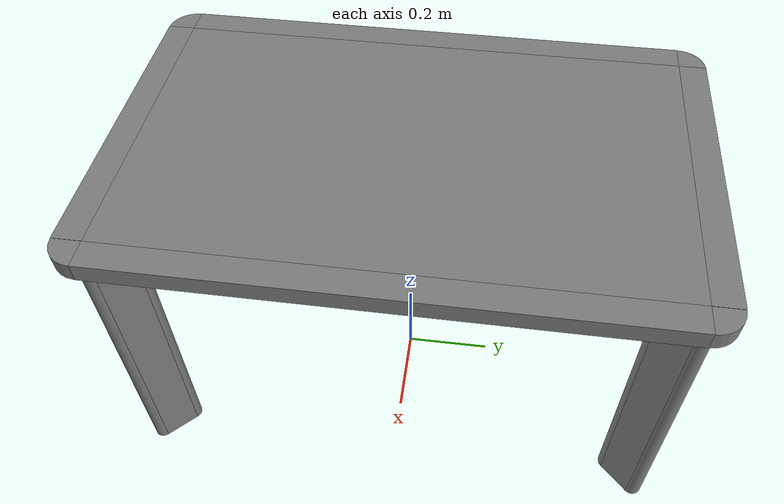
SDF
<?xml version="1.0" ?>
<sdf version="1.4">
    <model name='kitchen_table'>
      <link name='link'>
        <pose>0.0 0.0 0.0 0 0 0</pose>
        <inertial>
          <mass>10.0</mass>
          <inertia>
            <ixx>1</ixx>
            <ixy>0</ixy>
            <ixz>0</ixz>
            <iyy>1</iyy>
            <iyz>0</iyz>
            <izz>1</izz>
          </inertia>
        </inertial>
        <visual name='center_board'>
          <pose>0.0 0.0 0.68 0 0 0</pose>
          <geometry>
            <box>
              <size>0.68 1.13 0.04</size>
            </box>
          </geometry>
          <material>
            <!-- base_materials/wood -->
            <name>wood</name>
            <ambient>1 1 1 1</ambient>
            <diffuse>0.5 0.5 0.5 1.0</diffuse>
            <specular>0 0 0 1.0</specular>
            <shininess>12.5</shininess>
            <pbr>
              <metal>
                <albedo_map>model://base_materials/wood/textures/light_wood.png</albedo_map>
                <max_anisotropy>16</max_anisotropy>
                <metalness>0</metalness>
              </metal>
            </pbr>
          </material>
        </visual>
        <collision name='collision_center_board'>
          <pose>0.0 0.0 0.68 0 0 0</pose>
          <geometry>
            <box>
              <size>0.68 1.13 0.04</size>
            </box>
          </geometry>
          <max_contacts>10</max_contacts>
          <surface>
            <bounce/>
            <friction>
              <ode/>
            </friction>
            <contact>
              <ode/>
            </contact>
          </surface>
        </collision>
        <visual name='front_board'>
          <pose>0.37 0 0.68 0 0 0</pose>
          <geometry>
            <box>
              <size>0.06 1.13 0.04</size>
            </box>
          </geometry>
          <material>
            <!-- base_materials/wood -->
            <name>wood</name>
            <ambient>1 1 1 1</ambient>
            <diffuse>0.5 0.5 0.5 1.0</diffuse>
            <specular>0 0 0 1.0</specular>
            <shininess>12.5</shininess>
            <pbr>
              <metal>
                <albedo_map>model://base_materials/wood/textures/light_wood.png</albedo_map>
                <max_anisotropy>16</max_anisotropy>
                <metalness>0</metalness>
              </metal>
            </pbr>
          </material>
        </visual>
        <collision name='collision_front_board'>
          <pose>0.37 0 0.68 0 0 0</pose>
          <geometry>
            <box>
              <size>0.06 1.13 0.04</size>
            </box>
          </geometry>
          <max_contacts>10</max_contacts>
          <surface>
            <bounce/>
            <friction>
              <ode/>
            </friction>
            <contact>
              <ode/>
            </contact>
          </surface>
        </collision>
        <visual name='back_board'>
          <pose>-0.37 0 0.68 0 0 0</pose>
          <geometry>
            <box>
              <size>0.06 1.13 0.04</size>
            </box>
          </geometry>
          <material>
            <!-- base_materials/wood -->
            <name>wood</name>
            <ambient>1 1 1 1</ambient>
            <diffuse>0.5 0.5 0.5 1.0</diffuse>
            <specular>0 0 0 1.0</specular>
            <shininess>12.5</shininess>
            <pbr>
              <metal>
                <albedo_map>model://base_materials/wood/textures/light_wood.png</albedo_map>
                <max_anisotropy>16</max_anisotropy>
                <metalness>0</metalness>
              </metal>
            </pbr>
          </material>
        </visual>
        <collision name='collision_back_board'>
          <pose>-0.37 0 0.68 0 0 0</pose>
          <geometry>
            <box>
              <size>0.06 1.13 0.04</size>
            </box>
          </geometry>
          <max_contacts>10</max_contacts>
          <surface>
            <bounce/>
            <friction>
              <ode/>
            </friction>
            <contact>
              <ode/>
            </contact>
          </surface>
        </collision>
        <visual name='right_board'>
          <pose>0 0.595 0.68 0 0 0</pose>
          <geometry>
            <box>
              <size>0.68 0.06 0.04</size>
            </box>
          </geometry>
          <material>
            <!-- base_materials/wood -->
            <name>wood</name>
            <ambient>1 1 1 1</ambient>
            <diffuse>0.5 0.5 0.5 1.0</diffuse>
            <specular>0 0 0 1.0</specular>
            <shininess>12.5</shininess>
            <pbr>
              <metal>
                <albedo_map>model://base_materials/wood/textures/light_wood.png</albedo_map>
                <max_anisotropy>16</max_anisotropy>
                <metalness>0</metalness>
              </metal>
            </pbr>
          </material>
        </visual>
        <collision name='collision_right_board'>
          <pose>0 0.595 0.68 0 0 0</pose>
          <geometry>
            <box>
              <size>0.68 0.06 0.04</size>
            </box>
          </geometry>
          <max_contacts>10</max_contacts>
          <surface>
            <bounce/>
            <friction>
              <ode/>
            </friction>
            <contact>
              <ode/>
            </contact>
          </surface>
        </collision>
        <visual name='left_board'>
          <pose>0 -0.595 0.68 0 0 0</pose>
          <geometry>
            <box>
              <size>0.68 0.06 0.04</size>
            </box>
          </geometry>
          <material>
            <!-- base_materials/wood -->
            <name>wood</name>
            <ambient>1 1 1 1</ambient>
            <diffuse>0.5 0.5 0.5 1.0</diffuse>
            <specular>0 0 0 1.0</specular>
            <shininess>12.5</shininess>
            <pbr>
              <metal>
                <albedo_map>model://base_materials/wood/textures/light_wood.png</albedo_map>
                <max_anisotropy>16</max_anisotropy>
                <metalness>0</metalness>
              </metal>
            </pbr>
          </material>
        </visual>
        <collision name='collision_left_board'>
          <pose>0 -0.595 0.68 0 0 0</pose>
          <geometry>
            <box>
              <size>0.68 0.06 0.04</size>
            </box>
          </geometry>
          <max_contacts>10</max_contacts>
          <surface>
            <bounce/>
            <friction>
              <ode/>
            </friction>
            <contact>
              <ode/>
            </contact>
          </surface>
        </collision>
        <visual name='front_right_corner_board'>
          <pose>0.34 0.565 0.68 0 0 0</pose>
          <geometry>
            <cylinder>
              <radius>0.06</radius>
              <length>0.039</length>
            </cylinder>
          </geometry>
          <material>
            <!-- base_materials/wood -->
            <name>wood</name>
            <ambient>1 1 1 1</ambient>
            <diffuse>0.5 0.5 0.5 1.0</diffuse>
            <specular>0 0 0 1.0</specular>
            <shininess>12.5</shininess>
            <pbr>
              <metal>
                <albedo_map>model://base_materials/wood/textures/light_wood.png</albedo_map>
                <max_anisotropy>16</max_anisotropy>
                <metalness>0</metalness>
              </metal>
            </pbr>
          </material>
        </visual>
        <collision name='collision_front_right_corner_board'>
          <pose>0.34 0.565 0.68 0 0 0</pose>
          <geometry>
            <cylinder>
              <radius>0.06</radius>
              <length>0.039</length>
            </cylinder>
          </geometry>
          <max_contacts>10</max_contacts>
          <surface>
            <bounce/>
            <friction>
              <ode/>
            </friction>
            <contact>
              <ode/>
            </contact>
          </surface>
        </collision>
        <visual name='front_left_corner_board'>
          <pose>0.34 -0.565 0.68 0 0 0</pose>
          <geometry>
            <cylinder>
              <radius>0.06</radius>
              <length>0.039</length>
            </cylinder>
          </geometry>
          <material>
            <!-- base_materials/wood -->
            <name>wood</name>
            <ambient>1 1 1 1</ambient>
            <diffuse>0.5 0.5 0.5 1.0</diffuse>
            <specular>0 0 0 1.0</specular>
            <shininess>12.5</shininess>
            <pbr>
              <metal>
                <albedo_map>model://base_materials/wood/textures/light_wood.png</albedo_map>
                <max_anisotropy>16</max_anisotropy>
                <metalness>0</metalness>
              </metal>
            </pbr>
          </material>
        </visual>
        <collision name='collision_front_left_corner_board'>
          <pose>0.34 -0.565 0.68 0 0 0</pose>
          <geometry>
            <cylinder>
              <radius>0.06</radius>
              <length>0.039</length>
            </cylinder>
          </geometry>
          <max_contacts>10</max_contacts>
          <surface>
            <bounce/>
            <friction>
              <ode/>
            </friction>
            <contact>
              <ode/>
            </contact>
          </surface>
        </collision>
        <visual name='front_back_right_corner_board'>
          <pose>-0.34 0.565 0.68 0 0 0</pose>
          <geometry>
            <cylinder>
              <radius>0.06</radius>
              <length>0.039</length>
            </cylinder>
          </geometry>
          <material>
            <!-- base_materials/wood -->
            <name>wood</name>
            <ambient>1 1 1 1</ambient>
            <diffuse>0.5 0.5 0.5 1.0</diffuse>
            <specular>0 0 0 1.0</specular>
            <shininess>12.5</shininess>
            <pbr>
              <metal>
                <albedo_map>model://base_materials/wood/textures/light_wood.png</albedo_map>
                <max_anisotropy>16</max_anisotropy>
                <metalness>0</metalness>
              </metal>
            </pbr>
          </material>
        </visual>
        <collision name='collision_back_right_corner_board'>
          <pose>-0.34 0.565 0.68 0 0 0</pose>
          <geometry>
            <cylinder>
              <radius>0.06</radius>
              <length>0.039</length>
            </cylinder>
          </geometry>
          <max_contacts>10</max_contacts>
          <surface>
            <bounce/>
            <friction>
              <ode/>
            </friction>
            <contact>
              <ode/>
            </contact>
          </surface>
        </collision>
        <visual name='front_back_left_corner_board'>
          <pose>-0.34 -0.565 0.68 0 0 0</pose>
          <geometry>
            <cylinder>
              <radius>0.06</radius>
              <length>0.039</length>
            </cylinder>
          </geometry>
          <material>
            <!-- base_materials/wood -->
            <name>wood</name>
            <ambient>1 1 1 1</ambient>
            <diffuse>0.5 0.5 0.5 1.0</diffuse>
            <specular>0 0 0 1.0</specular>
            <shininess>12.5</shininess>
            <pbr>
              <metal>
                <albedo_map>model://base_materials/wood/textures/light_wood.png</albedo_map>
                <max_anisotropy>16</max_anisotropy>
                <metalness>0</metalness>
              </metal>
            </pbr>
          </material>
        </visual>
        <collision name='collision_back_left_corner_board'>
          <pose>-0.34 -0.565 0.68 0 0 0</pose>
          <geometry>
            <cylinder>
              <radius>0.06</radius>
              <length>0.039</length>
            </cylinder>
          </geometry>
          <max_contacts>10</max_contacts>
          <surface>
            <bounce/>
            <friction>
              <ode/>
            </friction>
            <contact>
              <ode/>
            </contact>
          </surface>
        </collision>
        <visual name='front_left_corner_frame1'>
          <pose>0.345858 -0.57086 0.33 0 0 0</pose>
          <geometry>
            <cylinder>
              <radius>0.02</radius>
              <length>0.66</length>
            </cylinder>
          </geometry>
          <material>
            <!-- base_materials/wood -->
            <name>wood</name>
            <ambient>1 1 1 1</ambient>
            <diffuse>0.5 0.5 0.5 1.0</diffuse>
            <specular>0 0 0 1.0</specular>
            <shininess>12.5</shininess>
            <pbr>
              <metal>
                <albedo_map>model://base_materials/wood/textures/light_wood.png</albedo_map>
                <max_anisotropy>16</max_anisotropy>
                <metalness>0</metalness>
              </metal>
            </pbr>
          </material>
        </visual>
        <collision name='collision_front_left_corner_frame1'>
          <pose>0.345858 -0.57086 0.33 0 0 0</pose>
          <geometry>
            <cylinder>
              <radius>0.02</radius>
              <length>0.66</length>
            </cylinder>
          </geometry>
          <max_contacts>10</max_contacts>
          <surface>
            <bounce/>
            <friction>
              <ode/>
            </friction>
            <contact>
              <ode/>
            </contact>
          </surface>
        </collision>
        <visual name='front_left_corner_frame2'>
          <pose>0.317574 -0.54257 0.33 0 0 0.7854</pose>
          <geometry>
            <box>
              <size>0.04 0.08 0.66</size>
            </box>
          </geometry>
          <material>
            <!-- base_materials/wood -->
            <name>wood</name>
            <ambient>1 1 1 1</ambient>
            <diffuse>0.5 0.5 0.5 1.0</diffuse>
            <specular>0 0 0 1.0</specular>
            <shininess>12.5</shininess>
            <pbr>
              <metal>
                <albedo_map>model://base_materials/wood/textures/light_wood.png</albedo_map>
                <max_anisotropy>16</max_anisotropy>
                <metalness>0</metalness>
              </metal>
            </pbr>
          </material>
        </visual>
        <collision name='collision_front_left_corner_frame2'>
          <pose>0.317574 -0.54257 0.33 0 0 0.7854</pose>
          <geometry>
            <box>
              <size>0.04 0.08 0.66</size>
            </box>
          </geometry>
          <max_contacts>10</max_contacts>
          <surface>
            <bounce/>
            <friction>
              <ode/>
            </friction>
            <contact>
              <ode/>
            </contact>
          </surface>
        </collision>
        <visual name='front_left_corner_frame3'>
          <pose>0.289289 -0.51429 0.33 0 0 0</pose>
          <geometry>
            <cylinder>
              <radius>0.02</radius>
              <length>0.66</length>
            </cylinder>
          </geometry>
          <material>
            <!-- base_materials/wood -->
            <name>wood</name>
            <ambient>1 1 1 1</ambient>
            <diffuse>0.5 0.5 0.5 1.0</diffuse>
            <specular>0 0 0 1.0</specular>
            <shininess>12.5</shininess>
            <pbr>
              <metal>
                <albedo_map>model://base_materials/wood/textures/light_wood.png</albedo_map>
                <max_anisotropy>16</max_anisotropy>
                <metalness>0</metalness>
              </metal>
            </pbr>
          </material>
        </visual>
        <collision name='collision_front_left_corner_frame3'>
          <pose>0.289289 -0.51429 0.33 0 0 0</pose>
          <geometry>
            <cylinder>
              <radius>0.02</radius>
              <length>0.66</length>
            </cylinder>
          </geometry>
          <max_contacts>10</max_contacts>
          <surface>
            <bounce/>
            <friction>
              <ode/>
            </friction>
            <contact>
              <ode/>
            </contact>
          </surface>
        </collision>
        <visual name='front_right_corner_frame1'>
          <pose>0.345858 0.57086 0.33 0 0 0</pose>
          <geometry>
            <cylinder>
              <radius>0.02</radius>
              <length>0.66</length>
            </cylinder>
          </geometry>
          <material>
            <!-- base_materials/wood -->
            <name>wood</name>
            <ambient>1 1 1 1</ambient>
            <diffuse>0.5 0.5 0.5 1.0</diffuse>
            <specular>0 0 0 1.0</specular>
            <shininess>12.5</shininess>
            <pbr>
              <metal>
                <albedo_map>model://base_materials/wood/textures/light_wood.png</albedo_map>
                <max_anisotropy>16</max_anisotropy>
                <metalness>0</metalness>
              </metal>
            </pbr>
          </material>
        </visual>
        <collision name='collision_front_right_corner_frame1'>
          <pose>0.345858 0.57086 0.33 0 0 0</pose>
          <geometry>
            <cylinder>
              <radius>0.02</radius>
              <length>0.66</length>
            </cylinder>
          </geometry>
          <max_contacts>10</max_contacts>
          <surface>
            <bounce/>
            <friction>
              <ode/>
            </friction>
            <contact>
              <ode/>
            </contact>
          </surface>
        </collision>
        <visual name='front_right_corner_frame2'>
          <pose>0.317574 0.54257 0.33 0 0 -0.7854</pose>
          <geometry>
            <box>
              <size>0.04 0.08 0.66</size>
            </box>
          </geometry>
          <material>
            <!-- base_materials/wood -->
            <name>wood</name>
            <ambient>1 1 1 1</ambient>
            <diffuse>0.5 0.5 0.5 1.0</diffuse>
            <specular>0 0 0 1.0</specular>
            <shininess>12.5</shininess>
            <pbr>
              <metal>
                <albedo_map>model://base_materials/wood/textures/light_wood.png</albedo_map>
                <max_anisotropy>16</max_anisotropy>
                <metalness>0</metalness>
              </metal>
            </pbr>
          </material>
        </visual>
        <collision name='collision_front_right_corner_frame2'>
          <pose>0.317574 0.54257 0.33 0 0 -0.7854</pose>
          <geometry>
            <box>
              <size>0.04 0.08 0.66</size>
            </box>
          </geometry>
          <max_contacts>10</max_contacts>
          <surface>
            <bounce/>
            <friction>
              <ode/>
            </friction>
            <contact>
              <ode/>
            </contact>
          </surface>
        </collision>
        <visual name='front_right_corner_frame3'>
          <pose>0.289289 0.51429 0.33 0 0 0</pose>
          <geometry>
            <cylinder>
              <radius>0.02</radius>
              <length>0.66</length>
            </cylinder>
          </geometry>
          <material>
            <!-- base_materials/wood -->
            <name>wood</name>
            <ambient>1 1 1 1</ambient>
            <diffuse>0.5 0.5 0.5 1.0</diffuse>
            <specular>0 0 0 1.0</specular>
            <shininess>12.5</shininess>
            <pbr>
              <metal>
                <albedo_map>model://base_materials/wood/textures/light_wood.png</albedo_map>
                <max_anisotropy>16</max_anisotropy>
                <metalness>0</metalness>
              </metal>
            </pbr>
          </material>
        </visual>
        <collision name='collision_front_right_corner_frame3'>
          <pose>0.289289 0.51429 0.33 0 0 0</pose>
          <geometry>
            <cylinder>
              <radius>0.02</radius>
              <length>0.66</length>
            </cylinder>
          </geometry>
          <max_contacts>10</max_contacts>
          <surface>
            <bounce/>
            <friction>
              <ode/>
            </friction>
            <contact>
              <ode/>
            </contact>
          </surface>
        </collision>
        <visual name='back_left_corner_frame1'>
          <pose>-0.345858 -0.57086 0.33 0 0 0</pose>
          <geometry>
            <cylinder>
              <radius>0.02</radius>
              <length>0.66</length>
            </cylinder>
          </geometry>
          <material>
            <!-- base_materials/wood -->
            <name>wood</name>
            <ambient>1 1 1 1</ambient>
            <diffuse>0.5 0.5 0.5 1.0</diffuse>
            <specular>0 0 0 1.0</specular>
            <shininess>12.5</shininess>
            <pbr>
              <metal>
                <albedo_map>model://base_materials/wood/textures/light_wood.png</albedo_map>
                <max_anisotropy>16</max_anisotropy>
                <metalness>0</metalness>
              </metal>
            </pbr>
          </material>
        </visual>
        <collision name='collision_back_left_corner_frame1'>
          <pose>-0.345858 -0.57086 0.33 0 0 0</pose>
          <geometry>
            <cylinder>
              <radius>0.02</radius>
              <length>0.66</length>
            </cylinder>
          </geometry>
          <max_contacts>10</max_contacts>
          <surface>
            <bounce/>
            <friction>
              <ode/>
            </friction>
            <contact>
              <ode/>
            </contact>
          </surface>
        </collision>
        <visual name='back_left_corner_frame2'>
          <pose>-0.317574 -0.54257 0.33 0 0 -0.7854</pose>
          <geometry>
            <box>
              <size>0.04 0.08 0.66</size>
            </box>
          </geometry>
          <material>
            <!-- base_materials/wood -->
            <name>wood</name>
            <ambient>1 1 1 1</ambient>
            <diffuse>0.5 0.5 0.5 1.0</diffuse>
            <specular>0 0 0 1.0</specular>
            <shininess>12.5</shininess>
            <pbr>
              <metal>
                <albedo_map>model://base_materials/wood/textures/light_wood.png</albedo_map>
                <max_anisotropy>16</max_anisotropy>
                <metalness>0</metalness>
              </metal>
            </pbr>
          </material>
        </visual>
        <collision name='collision_back_left_corner_frame2'>
          <pose>-0.317574 -0.54257 0.33 0 0 -0.7854</pose>
          <geometry>
            <box>
              <size>0.04 0.08 0.66</size>
            </box>
          </geometry>
          <max_contacts>10</max_contacts>
          <surface>
            <bounce/>
            <friction>
              <ode/>
            </friction>
            <contact>
              <ode/>
            </contact>
          </surface>
        </collision>
        <visual name='back_left_corner_frame3'>
          <pose>-0.289289 -0.51429 0.33 0 0 0</pose>
          <geometry>
            <cylinder>
              <radius>0.02</radius>
              <length>0.66</length>
            </cylinder>
          </geometry>
          <material>
            <!-- base_materials/wood -->
            <name>wood</name>
            <ambient>1 1 1 1</ambient>
            <diffuse>0.5 0.5 0.5 1.0</diffuse>
            <specular>0 0 0 1.0</specular>
            <shininess>12.5</shininess>
            <pbr>
              <metal>
                <albedo_map>model://base_materials/wood/textures/light_wood.png</albedo_map>
                <max_anisotropy>16</max_anisotropy>
                <metalness>0</metalness>
              </metal>
            </pbr>
          </material>
        </visual>
        <collision name='collision_back_left_corner_frame3'>
          <pose>-0.289289 -0.51429 0.33 0 0 0</pose>
          <geometry>
            <cylinder>
              <radius>0.02</radius>
              <length>0.66</length>
            </cylinder>
          </geometry>
          <max_contacts>10</max_contacts>
          <surface>
            <bounce/>
            <friction>
              <ode/>
            </friction>
            <contact>
              <ode/>
            </contact>
          </surface>
        </collision>
        <visual name='back_right_corner_frame1'>
          <pose>-0.345858 0.57086 0.33 0 0 0</pose>
          <geometry>
            <cylinder>
              <radius>0.02</radius>
              <length>0.66</length>
            </cylinder>
          </geometry>
          <material>
            <!-- base_materials/wood -->
            <name>wood</name>
            <ambient>1 1 1 1</ambient>
            <diffuse>0.5 0.5 0.5 1.0</diffuse>
            <specular>0 0 0 1.0</specular>
            <shininess>12.5</shininess>
            <pbr>
              <metal>
                <albedo_map>model://base_materials/wood/textures/light_wood.png</albedo_map>
                <max_anisotropy>16</max_anisotropy>
                <metalness>0</metalness>
              </metal>
            </pbr>
          </material>
        </visual>
        <collision name='collision_back_right_corner_frame1'>
          <pose>-0.345858 0.57086 0.33 0 0 0</pose>
          <geometry>
            <cylinder>
              <radius>0.02</radius>
              <length>0.66</length>
            </cylinder>
          </geometry>
          <max_contacts>10</max_contacts>
          <surface>
            <bounce/>
            <friction>
              <ode/>
            </friction>
            <contact>
              <ode/>
            </contact>
          </surface>
        </collision>
        <visual name='back_right_corner_frame2'>
          <pose>-0.317574 0.54257 0.33 0 0 0.7854</pose>
          <geometry>
            <box>
              <size>0.04 0.08 0.66</size>
            </box>
          </geometry>
          <material>
            <!-- base_materials/wood -->
            <name>wood</name>
            <ambient>1 1 1 1</ambient>
            <diffuse>0.5 0.5 0.5 1.0</diffuse>
            <specular>0 0 0 1.0</specular>
            <shininess>12.5</shininess>
            <pbr>
              <metal>
                <albedo_map>model://base_materials/wood/textures/light_wood.png</albedo_map>
                <max_anisotropy>16</max_anisotropy>
                <metalness>0</metalness>
              </metal>
            </pbr>
          </material>
        </visual>
        <collision name='collision_back_right_corner_frame2'>
          <pose>-0.317574 0.54257 0.33 0 0 0.7854</pose>
          <geometry>
            <box>
              <size>0.04 0.08 0.66</size>
            </box>
          </geometry>
          <max_contacts>10</max_contacts>
          <surface>
            <bounce/>
            <friction>
              <ode/>
            </friction>
            <contact>
              <ode/>
            </contact>
          </surface>
        </collision>
        <visual name='back_right_corner_frame3'>
          <pose>-0.289289 0.51429 0.33 0 0 0</pose>
          <geometry>
            <cylinder>
              <radius>0.02</radius>
              <length>0.66</length>
            </cylinder>
          </geometry>
          <material>
            <!-- base_materials/wood -->
            <name>wood</name>
            <ambient>1 1 1 1</ambient>
            <diffuse>0.5 0.5 0.5 1.0</diffuse>
            <specular>0 0 0 1.0</specular>
            <shininess>12.5</shininess>
            <pbr>
              <metal>
                <albedo_map>model://base_materials/wood/textures/light_wood.png</albedo_map>
                <max_anisotropy>16</max_anisotropy>
                <metalness>0</metalness>
              </metal>
            </pbr>
          </material>
        </visual>
        <collision name='collision_back_right_corner_frame3'>
          <pose>-0.289289 0.51429 0.33 0 0 0</pose>
          <geometry>
            <cylinder>
              <radius>0.02</radius>
              <length>0.66</length>
            </cylinder>
          </geometry>
          <max_contacts>10</max_contacts>
          <surface>
            <bounce/>
            <friction>
              <ode/>
            </friction>
            <contact>
              <ode/>
            </contact>
          </surface>
        </collision>
        <velocity_decay>
          <linear>0</linear>
          <angular>0</angular>
        </velocity_decay>
        <self_collide>0</self_collide>
        <kinematic>0</kinematic>
        <gravity>1</gravity>
      </link>
      <static>1</static>
    </model>
</sdf>
